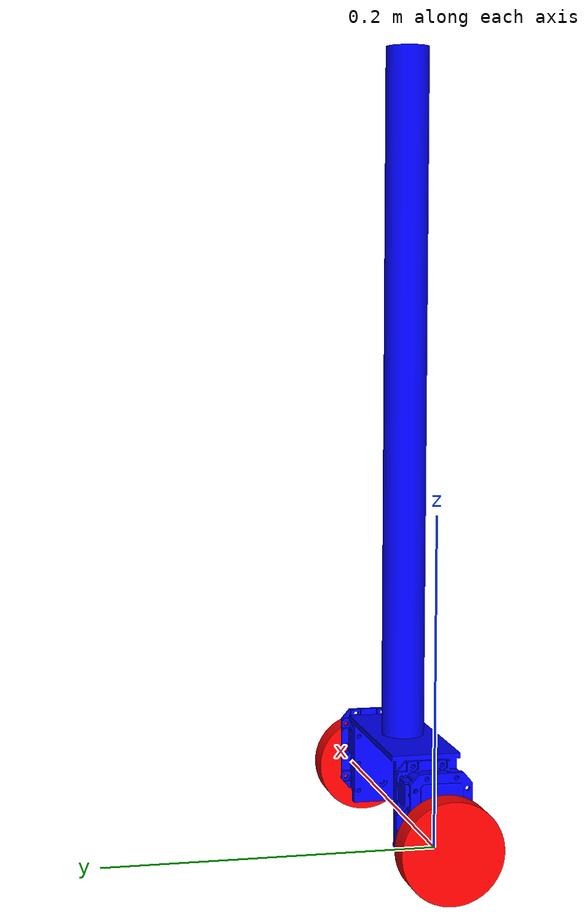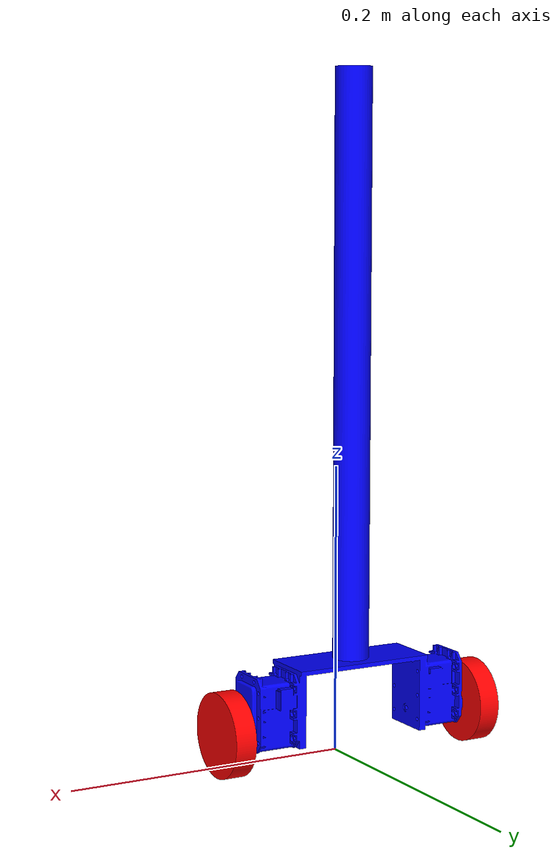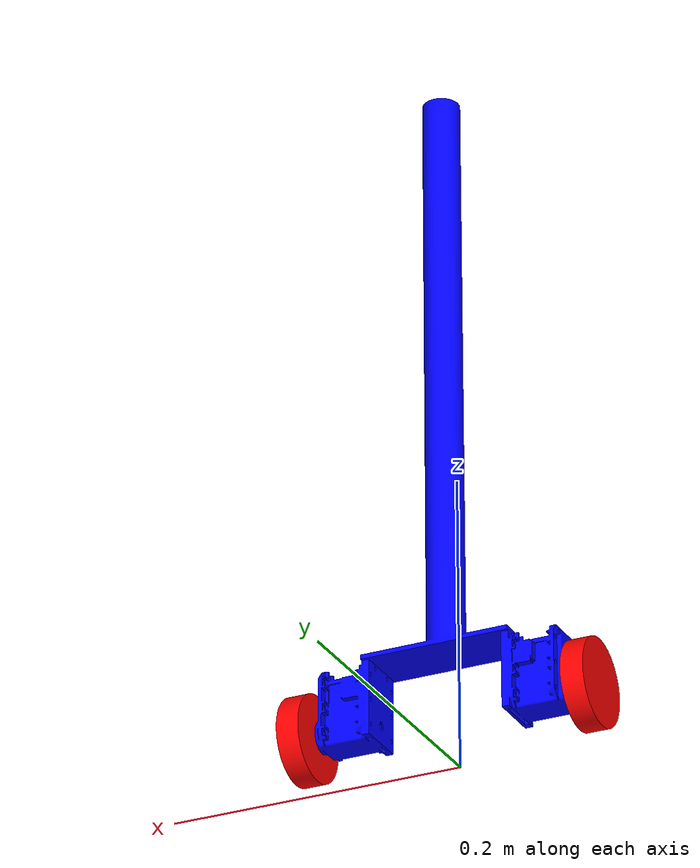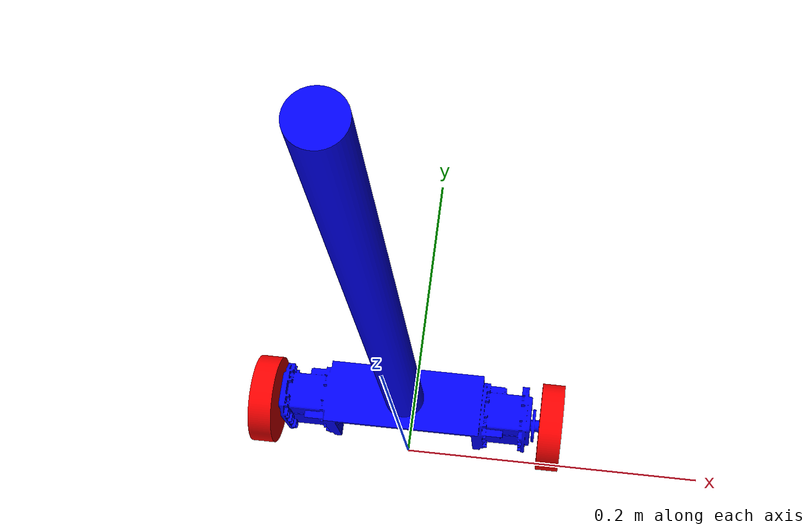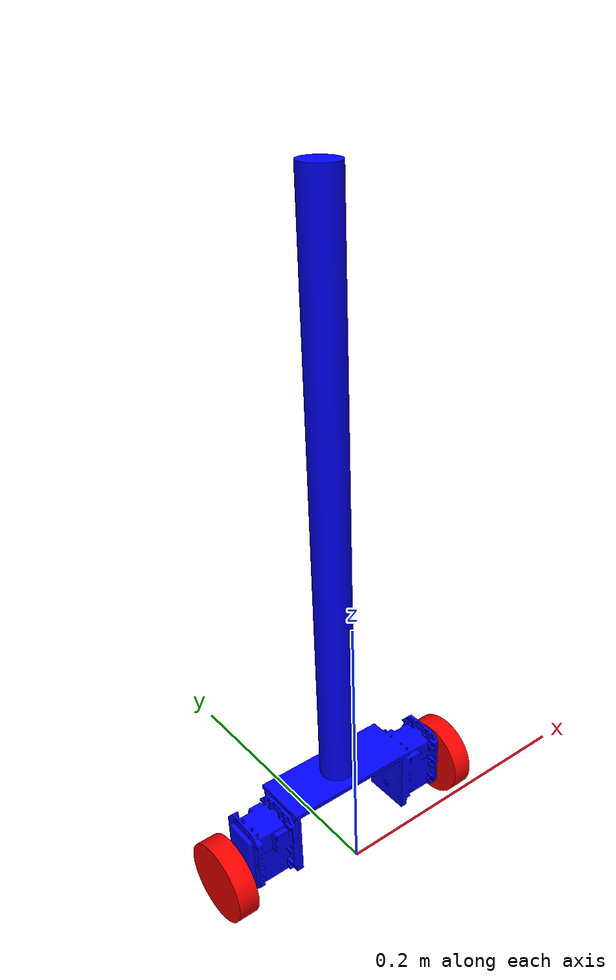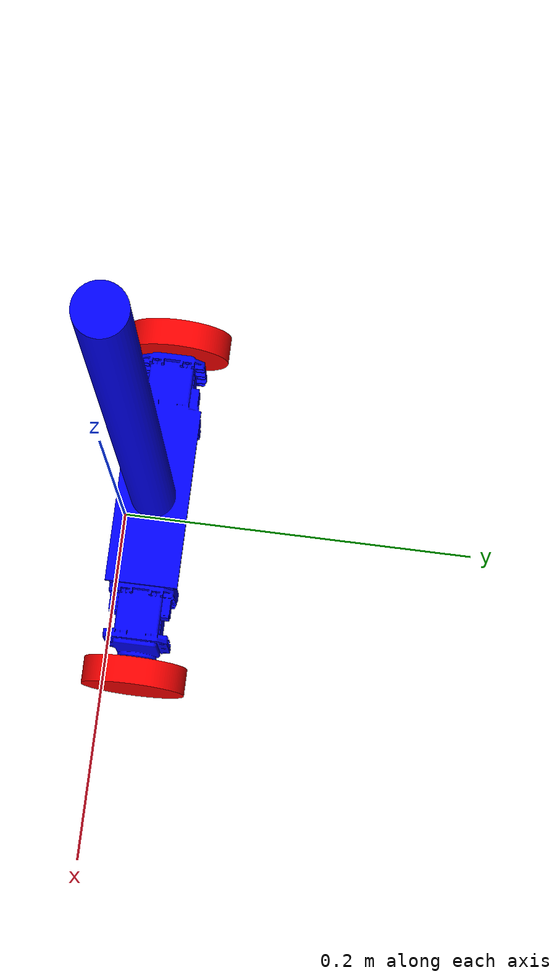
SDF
<?xml version="1.0" ?>
<sdf version="1.8">
    <model name='simple_robot'>

        <!-- ..... LINKS ..... -->
        <link name='core'>
            <pose relative_to='__model__'> 0 0 0 0 0 0</pose>
            <inertial>
                <mass>1.5</mass>
                <pose>0 0.020 0.042686 0 0 0</pose>
                <inertia>
                    <ixx>0.005</ixx>
                    <ixy>0</ixy>
                    <ixz>0</ixz>
                    <iyy>0.005</iyy>
                    <iyz>0</iyz>
                    <izz>0.005</izz>
                </inertia>
            </inertial>
            <visual name='visual'>
                <geometry>
                    <mesh>
                        <uri>model://simple_robot/meshes/collision/core.stl</uri>
                        <scale>0.001 0.001 0.001</scale>
                    </mesh>
                </geometry>
                <material>
                    <ambient>0 0 1.0 1</ambient>
                    <diffuse>0 0 1.0 1</diffuse>
                    <specular>0 0 1.0 1</specular>
                </material>
            </visual>
            <collision name='collision'>
                <geometry>
                    <mesh>
                        <uri>model://simple_robot/meshes/collision/core.stl</uri>
                        <scale>0.001 0.001 0.001</scale>
                    </mesh>
                </geometry>
            </collision>
            <sensor name='gpu_lidar' type='gpu_lidar'>
                <pose>0 0 0.1 0 0 1.5708</pose>
                <topic>/simple_robot/laser_scan</topic>
                <update_rate>10</update_rate>
                <lidar>
                    <scan>
                        <horizontal>
                            <samples>640</samples>
                            <resolution>1</resolution>
                            <min_angle>-1.396263</min_angle>
                            <max_angle>1.396263</max_angle>
                        </horizontal>
                        <vertical>
                            <samples>1</samples>
                            <resolution>1</resolution>
                            <min_angle>0.0</min_angle>
                            <max_angle>0.0</max_angle>
                        </vertical>
                    </scan>
                    <range>
                        <min>0.08</min>
                        <max>10.0</max>
                        <resolution>0.01</resolution>
                    </range>
                </lidar>
                <alwaysOn>true</alwaysOn>
                <visualize>true</visualize>
            </sensor>
            <sensor name="imu" type="imu">
                <topic>/simple_robot/imu</topic>
                <always_on>true</always_on>
                <update_rate>100</update_rate>
                <visualize>true</visualize>
              </sensor>
        </link>

        <link name='left_wheel'>
            <pose relative_to="__model__">0 0 0 0 0 0</pose>
            <inertial>
                <pose>-0.09610 0.020 0.029 0 0 0</pose>
                <mass>0.25</mass>
                <inertia>
                    <ixx>0.000015498371</ixx>
                    <ixy>0</ixy>
                    <ixz>0</ixz>
                    <iyy>0.000008440253</iyy>
                    <iyz>0</iyz>
                    <izz>0.000008440255</izz>
                </inertia>
            </inertial>
            <visual name='visual'>
                <geometry>
                    <mesh>
                        <uri>model://simple_robot/meshes/collision/left_wheel.stl</uri>
                        <scale>0.001 0.001 0.001</scale>
                    </mesh>
                </geometry>
                <material>
                    <ambient>1.0 0 0 1</ambient>
                    <diffuse>1.0 0 0 1</diffuse>
                    <specular>1.0 0 0 1</specular>
                </material>
            </visual>
            <collision name='collision'>
                <geometry>
                    <mesh>
                        <uri>model://simple_robot/meshes/collision/left_wheel.stl</uri>
                        <scale>0.001 0.001 0.001</scale>
                    </mesh>
                </geometry>
            </collision>
        </link>

        <link name='right_wheel'>
            <pose relative_to="__model__">0 0 0 0 0 0</pose>
            <inertial>
                <pose>0.09610 0.020 0.029 0 0 0</pose>
                <mass>0.25</mass>
                <inertia>
                    <ixx>0.000015498371</ixx>
                    <ixy>0</ixy>
                    <ixz>0</ixz>
                    <iyy>0.000008440253</iyy>
                    <iyz>0</iyz>
                    <izz>0.000008440255</izz>
                </inertia>
            </inertial>
            <visual name='visual'>
                <geometry>
                    <mesh>
                        <uri>model://simple_robot/meshes/collision/right_wheel.stl</uri>
                        <scale>0.001 0.001 0.001</scale>
                    </mesh>
                </geometry>
                <material>
                    <ambient>1.0 0 0 1</ambient>
                    <diffuse>1.0 0 0 1</diffuse>
                    <specular>1.0 0 0 1</specular>
                </material>
            </visual>
            <collision name='collision'>
                <geometry>
                    <mesh>
                        <uri>model://simple_robot/meshes/collision/right_wheel.stl</uri>
                        <scale>0.001 0.001 0.001</scale>
                    </mesh>
                </geometry>
            </collision>
        </link>

        <!-- ..... JOINTS ..... -->
        <!--left wheel joint-->
        <joint name='left_wheel_joint' type='revolute'>
            <pose relative_to='__model__'> 0 0.020 0.029 0 0 0</pose>
            <parent>core</parent>
            <child>left_wheel</child>
            <axis>
                <xyz expressed_in='__model__'>1 0 0</xyz> <!--can be descired to any frame or even arbitrary frames-->
                <limit>
                    <lower>-1.79769e+308</lower>    <!--negative infinity-->
                    <upper>1.79769e+308</upper>     <!--positive infinity-->
                </limit>
            </axis>
        </joint>

        <!--right wheel joint-->
        <joint name='right_wheel_joint' type='revolute'>
            <pose relative_to='__model__'> 0 0.020 0.029 0 0 0</pose>
            <parent>core</parent>
            <child>right_wheel</child>
            <axis>
                <xyz expressed_in='__model__'>1 0 0</xyz>
                <limit>
                    <lower>-1.79769e+308</lower>    <!--negative infinity-->
                    <upper>1.79769e+308</upper>     <!--positive infinity-->
                </limit>
            </axis>
        </joint>

        <!-- ..... PLUGINS ..... -->

        <!--Plugin doc encoder Jointstatepublisher-->
        <plugin
            filename="libignition-gazebo-joint-state-publisher-system.so"
            name="ignition::gazebo::systems::JointStatePublisher">
            <joint_name>left_wheel_joint</joint_name>
            <joint_name>right_wheel_joint</joint_name>
            <topic>/simple_robot/joint_states</topic>
        </plugin>

        <!--plugin truyen luc cho banh trai Apply Joint Force-->
        <plugin
            filename="libignition-gazebo-apply-joint-force-system.so"
            name="ignition::gazebo::systems::ApplyJointForce">
            <joint_name>left_wheel_joint</joint_name>
        </plugin>

        <!--plugin truyen luc cho banh phai Apply Joint Force-->
        <plugin
            filename="libignition-gazebo-apply-joint-force-system.so"
            name="ignition::gazebo::systems::ApplyJointForce">
            <joint_name>right_wheel_joint</joint_name>
        </plugin>

        <!--plugin cho IMU-->
        <plugin filename="libignition-gazebo-imu-system.so"
        name="ignition::gazebo::systems::Imu">
        </plugin>
    </model>
</sdf>
